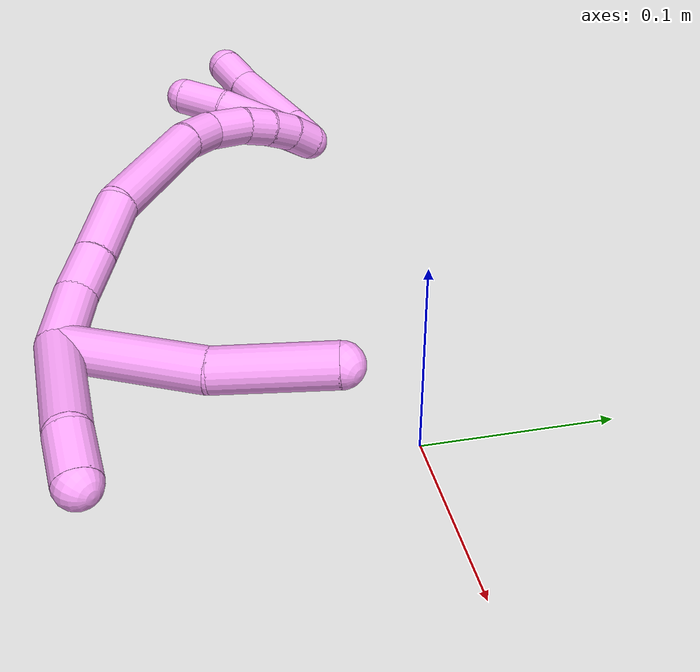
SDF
<sdf version="1.7">
 <world name="default">
  <model name="4">
   <static>0</static>
   <link name="4">
    <collision name="collision-cylinder-e_1_2_8">
     <pose>-0.020682 -0.001251 -0.035818 3.10669 -0.523386 -3.01145</pose>
     <geometry><cylinder><radius>0.0125</radius><length>0.082759</length></cylinder></geometry>
     <surface>
      <friction><ode><mu>1.16</mu><mu2>1.16</mu2><slip1>0</slip1><slip2>0</slip2></ode></friction>
      <contact><ode><kp>1e+06</kp><kd>1</kd><max_vel>0</max_vel><min_depth>0.001</min_depth></ode></contact>
     </surface>
    </collision>
    <visual name="visual-cylinder-e_1_2_8">
     <pose>-0.020682 -0.001251 -0.035818 3.10669 -0.523386 -3.01145</pose>
     <geometry><cylinder><radius>0.0125</radius><length>0.082759</length></cylinder></geometry>
     <material><ambient>1 0.65098 0.996078 1</ambient></material>
    </visual>
    <collision name="collision-cylinder-e_2_8_6">
     <pose>-0.063592 -0.001332 -0.096834 -3.09521 -0.722336 3.01893</pose>
     <geometry><cylinder><radius>0.0125</radius><length>0.067241</length></cylinder></geometry>
     <surface>
      <friction><ode><mu>1.16</mu><mu2>1.16</mu2><slip1>0</slip1><slip2>0</slip2></ode></friction>
      <contact><ode><kp>1e+06</kp><kd>1</kd><max_vel>0</max_vel><min_depth>0.001</min_depth></ode></contact>
     </surface>
    </collision>
    <visual name="visual-cylinder-e_2_8_6">
     <pose>-0.063592 -0.001332 -0.096834 -3.09521 -0.722336 3.01893</pose>
     <geometry><cylinder><radius>0.0125</radius><length>0.067241</length></cylinder></geometry>
     <material><ambient>1 0.65098 0.996078 1</ambient></material>
    </visual>
    <collision name="collision-cylinder-e_1_2_9">
     <pose>0.017543 0.004902 -0.030396 -2.98169 0.517924 -2.5542</pose>
     <geometry><cylinder><radius>0.0125</radius><length>0.070872</length></cylinder></geometry>
     <surface>
      <friction><ode><mu>1.16</mu><mu2>1.16</mu2><slip1>0</slip1><slip2>0</slip2></ode></friction>
      <contact><ode><kp>1e+06</kp><kd>1</kd><max_vel>0</max_vel><min_depth>0.001</min_depth></ode></contact>
     </surface>
    </collision>
    <visual name="visual-cylinder-e_1_2_9">
     <pose>0.017543 0.004902 -0.030396 -2.98169 0.517924 -2.5542</pose>
     <geometry><cylinder><radius>0.0125</radius><length>0.070872</length></cylinder></geometry>
     <material><ambient>1 0.65098 0.996078 1</ambient></material>
    </visual>
    <collision name="collision-cylinder-e_2_9_5">
     <pose>0.042031 0.008126 -0.073483 3.01009 0.497003 2.63381</pose>
     <geometry><cylinder><radius>0.0125</radius><length>0.029128</length></cylinder></geometry>
     <surface>
      <friction><ode><mu>1.16</mu><mu2>1.16</mu2><slip1>0</slip1><slip2>0</slip2></ode></friction>
      <contact><ode><kp>1e+06</kp><kd>1</kd><max_vel>0</max_vel><min_depth>0.001</min_depth></ode></contact>
     </surface>
    </collision>
    <visual name="visual-cylinder-e_2_9_5">
     <pose>0.042031 0.008126 -0.073483 3.01009 0.497003 2.63381</pose>
     <geometry><cylinder><radius>0.0125</radius><length>0.029128</length></cylinder></geometry>
     <material><ambient>1 0.65098 0.996078 1</ambient></material>
    </visual>
    <collision name="collision-cylinder-e_1_2_10">
     <pose>-0.014026 0.001666 0.010932 -0.151241 -0.903166 0.07346</pose>
     <geometry><cylinder><radius>0.0125</radius><length>0.035722</length></cylinder></geometry>
     <surface>
      <friction><ode><mu>1.16</mu><mu2>1.16</mu2><slip1>0</slip1><slip2>0</slip2></ode></friction>
      <contact><ode><kp>1e+06</kp><kd>1</kd><max_vel>0</max_vel><min_depth>0.001</min_depth></ode></contact>
     </surface>
    </collision>
    <visual name="visual-cylinder-e_1_2_10">
     <pose>-0.014026 0.001666 0.010932 -0.151241 -0.903166 0.07346</pose>
     <geometry><cylinder><radius>0.0125</radius><length>0.035722</length></cylinder></geometry>
     <material><ambient>1 0.65098 0.996078 1</ambient></material>
    </visual>
    <collision name="collision-cylinder-e_2_10_11">
     <pose>-0.039988 0.005956 0.028525 -0.375269 -1.03052 0.214215</pose>
     <geometry><cylinder><radius>0.0125</radius><length>0.027836</length></cylinder></geometry>
     <surface>
      <friction><ode><mu>1.16</mu><mu2>1.16</mu2><slip1>0</slip1><slip2>0</slip2></ode></friction>
      <contact><ode><kp>1e+06</kp><kd>1</kd><max_vel>0</max_vel><min_depth>0.001</min_depth></ode></contact>
     </surface>
    </collision>
    <visual name="visual-cylinder-e_2_10_11">
     <pose>-0.039988 0.005956 0.028525 -0.375269 -1.03052 0.214215</pose>
     <geometry><cylinder><radius>0.0125</radius><length>0.027836</length></cylinder></geometry>
     <material><ambient>1 0.65098 0.996078 1</ambient></material>
    </visual>
    <collision name="collision-cylinder-e_3_11_12">
     <pose>-0.06845 0.011721 0.045098 -0.306831 -1.0092 0.17039</pose>
     <geometry><cylinder><radius>0.0125</radius><length>0.039052</length></cylinder></geometry>
     <surface>
      <friction><ode><mu>1.16</mu><mu2>1.16</mu2><slip1>0</slip1><slip2>0</slip2></ode></friction>
      <contact><ode><kp>1e+06</kp><kd>1</kd><max_vel>0</max_vel><min_depth>0.001</min_depth></ode></contact>
     </surface>
    </collision>
    <visual name="visual-cylinder-e_3_11_12">
     <pose>-0.06845 0.011721 0.045098 -0.306831 -1.0092 0.17039</pose>
     <geometry><cylinder><radius>0.0125</radius><length>0.039052</length></cylinder></geometry>
     <material><ambient>1 0.65098 0.996078 1</ambient></material>
    </visual>
    <collision name="collision-cylinder-e_4_12_13">
     <pose>-0.122688 0.009695 0.07056 0.320825 -1.16091 -0.211434</pose>
     <geometry><cylinder><radius>0.0125</radius><length>0.082232</length></cylinder></geometry>
     <surface>
      <friction><ode><mu>1.16</mu><mu2>1.16</mu2><slip1>0</slip1><slip2>0</slip2></ode></friction>
      <contact><ode><kp>1e+06</kp><kd>1</kd><max_vel>0</max_vel><min_depth>0.001</min_depth></ode></contact>
     </surface>
    </collision>
    <visual name="visual-cylinder-e_4_12_13">
     <pose>-0.122688 0.009695 0.07056 0.320825 -1.16091 -0.211434</pose>
     <geometry><cylinder><radius>0.0125</radius><length>0.082232</length></cylinder></geometry>
     <material><ambient>1 0.65098 0.996078 1</ambient></material>
    </visual>
    <collision name="collision-cylinder-e_5_13_14">
     <pose>-0.172585 0.000772 0.089186 0.88441 -1.19165 -0.621275</pose>
     <geometry><cylinder><radius>0.0125</radius><length>0.026237</length></cylinder></geometry>
     <surface>
      <friction><ode><mu>1.16</mu><mu2>1.16</mu2><slip1>0</slip1><slip2>0</slip2></ode></friction>
      <contact><ode><kp>1e+06</kp><kd>1</kd><max_vel>0</max_vel><min_depth>0.001</min_depth></ode></contact>
     </surface>
    </collision>
    <visual name="visual-cylinder-e_5_13_14">
     <pose>-0.172585 0.000772 0.089186 0.88441 -1.19165 -0.621275</pose>
     <geometry><cylinder><radius>0.0125</radius><length>0.026237</length></cylinder></geometry>
     <material><ambient>1 0.65098 0.996078 1</ambient></material>
    </visual>
    <collision name="collision-cylinder-e_6_14_15">
     <pose>-0.19783 -0.007238 0.091 1.85954 -1.24324 -1.53008</pose>
     <geometry><cylinder><radius>0.0125</radius><length>0.027583</length></cylinder></geometry>
     <surface>
      <friction><ode><mu>1.16</mu><mu2>1.16</mu2><slip1>0</slip1><slip2>0</slip2></ode></friction>
      <contact><ode><kp>1e+06</kp><kd>1</kd><max_vel>0</max_vel><min_depth>0.001</min_depth></ode></contact>
     </surface>
    </collision>
    <visual name="visual-cylinder-e_6_14_15">
     <pose>-0.19783 -0.007238 0.091 1.85954 -1.24324 -1.53008</pose>
     <geometry><cylinder><radius>0.0125</radius><length>0.027583</length></cylinder></geometry>
     <material><ambient>1 0.65098 0.996078 1</ambient></material>
    </visual>
    <collision name="collision-cylinder-e_7_15_16">
     <pose>-0.219833 -0.016188 0.087607 1.99644 -1.04785 -1.46157</pose>
     <geometry><cylinder><radius>0.0125</radius><length>0.020652</length></cylinder></geometry>
     <surface>
      <friction><ode><mu>1.16</mu><mu2>1.16</mu2><slip1>0</slip1><slip2>0</slip2></ode></friction>
      <contact><ode><kp>1e+06</kp><kd>1</kd><max_vel>0</max_vel><min_depth>0.001</min_depth></ode></contact>
     </surface>
    </collision>
    <visual name="visual-cylinder-e_7_15_16">
     <pose>-0.219833 -0.016188 0.087607 1.99644 -1.04785 -1.46157</pose>
     <geometry><cylinder><radius>0.0125</radius><length>0.020652</length></cylinder></geometry>
     <material><ambient>1 0.65098 0.996078 1</ambient></material>
    </visual>
    <collision name="collision-cylinder-e_8_16_17">
     <pose>-0.237065 -0.026534 0.083851 1.85121 -0.953715 -1.2031</pose>
     <geometry><cylinder><radius>0.0125</radius><length>0.02032</length></cylinder></geometry>
     <surface>
      <friction><ode><mu>1.16</mu><mu2>1.16</mu2><slip1>0</slip1><slip2>0</slip2></ode></friction>
      <contact><ode><kp>1e+06</kp><kd>1</kd><max_vel>0</max_vel><min_depth>0.001</min_depth></ode></contact>
     </surface>
    </collision>
    <visual name="visual-cylinder-e_8_16_17">
     <pose>-0.237065 -0.026534 0.083851 1.85121 -0.953715 -1.2031</pose>
     <geometry><cylinder><radius>0.0125</radius><length>0.02032</length></cylinder></geometry>
     <material><ambient>1 0.65098 0.996078 1</ambient></material>
    </visual>
    <collision name="collision-cylinder-e_9_17_1">
     <pose>-0.25257 -0.03915 0.080471 1.81733 -0.787862 -0.979733</pose>
     <geometry><cylinder><radius>0.0125</radius><length>0.020367</length></cylinder></geometry>
     <surface>
      <friction><ode><mu>1.16</mu><mu2>1.16</mu2><slip1>0</slip1><slip2>0</slip2></ode></friction>
      <contact><ode><kp>1e+06</kp><kd>1</kd><max_vel>0</max_vel><min_depth>0.001</min_depth></ode></contact>
     </surface>
    </collision>
    <visual name="visual-cylinder-e_9_17_1">
     <pose>-0.25257 -0.03915 0.080471 1.81733 -0.787862 -0.979733</pose>
     <geometry><cylinder><radius>0.0125</radius><length>0.020367</length></cylinder></geometry>
     <material><ambient>1 0.65098 0.996078 1</ambient></material>
    </visual>
    <collision name="collision-cylinder-e_1_1_18">
     <pose>-0.248226 -0.038372 0.109913 -0.243313 0.345309 -0.042636</pose>
     <geometry><cylinder><radius>0.0125</radius><length>0.068317</length></cylinder></geometry>
     <surface>
      <friction><ode><mu>1.16</mu><mu2>1.16</mu2><slip1>0</slip1><slip2>0</slip2></ode></friction>
      <contact><ode><kp>1e+06</kp><kd>1</kd><max_vel>0</max_vel><min_depth>0.001</min_depth></ode></contact>
     </surface>
    </collision>
    <visual name="visual-cylinder-e_1_1_18">
     <pose>-0.248226 -0.038372 0.109913 -0.243313 0.345309 -0.042636</pose>
     <geometry><cylinder><radius>0.0125</radius><length>0.068317</length></cylinder></geometry>
     <material><ambient>1 0.65098 0.996078 1</ambient></material>
    </visual>
    <collision name="collision-cylinder-e_2_18_4">
     <pose>-0.231278 -0.02918 0.155936 -0.097316 0.346889 -0.017063</pose>
     <geometry><cylinder><radius>0.0125</radius><length>0.031683</length></cylinder></geometry>
     <surface>
      <friction><ode><mu>1.16</mu><mu2>1.16</mu2><slip1>0</slip1><slip2>0</slip2></ode></friction>
      <contact><ode><kp>1e+06</kp><kd>1</kd><max_vel>0</max_vel><min_depth>0.001</min_depth></ode></contact>
     </surface>
    </collision>
    <visual name="visual-cylinder-e_2_18_4">
     <pose>-0.231278 -0.02918 0.155936 -0.097316 0.346889 -0.017063</pose>
     <geometry><cylinder><radius>0.0125</radius><length>0.031683</length></cylinder></geometry>
     <material><ambient>1 0.65098 0.996078 1</ambient></material>
    </visual>
    <collision name="collision-cylinder-e_1_1_19">
     <pose>-0.261076 -0.04422 0.088651 -0.188496 -0.126621 0.011985</pose>
     <geometry><cylinder><radius>0.0125</radius><length>0.020389</length></cylinder></geometry>
     <surface>
      <friction><ode><mu>1.16</mu><mu2>1.16</mu2><slip1>0</slip1><slip2>0</slip2></ode></friction>
      <contact><ode><kp>1e+06</kp><kd>1</kd><max_vel>0</max_vel><min_depth>0.001</min_depth></ode></contact>
     </surface>
    </collision>
    <visual name="visual-cylinder-e_1_1_19">
     <pose>-0.261076 -0.04422 0.088651 -0.188496 -0.126621 0.011985</pose>
     <geometry><cylinder><radius>0.0125</radius><length>0.020389</length></cylinder></geometry>
     <material><ambient>1 0.65098 0.996078 1</ambient></material>
    </visual>
    <collision name="collision-cylinder-e_2_19_20">
     <pose>-0.2649 -0.037317 0.12529 -0.185378 -0.093096 0.00866</pose>
     <geometry><cylinder><radius>0.0125</radius><length>0.054577</length></cylinder></geometry>
     <surface>
      <friction><ode><mu>1.16</mu><mu2>1.16</mu2><slip1>0</slip1><slip2>0</slip2></ode></friction>
      <contact><ode><kp>1e+06</kp><kd>1</kd><max_vel>0</max_vel><min_depth>0.001</min_depth></ode></contact>
     </surface>
    </collision>
    <visual name="visual-cylinder-e_2_19_20">
     <pose>-0.2649 -0.037317 0.12529 -0.185378 -0.093096 0.00866</pose>
     <geometry><cylinder><radius>0.0125</radius><length>0.054577</length></cylinder></geometry>
     <material><ambient>1 0.65098 0.996078 1</ambient></material>
    </visual>
    <collision name="collision-cylinder-e_3_20_3">
     <pose>-0.269366 -0.029346 0.164002 -0.24194 -0.154792 0.018854</pose>
     <geometry><cylinder><radius>0.0125</radius><length>0.025034</length></cylinder></geometry>
     <surface>
      <friction><ode><mu>1.16</mu><mu2>1.16</mu2><slip1>0</slip1><slip2>0</slip2></ode></friction>
      <contact><ode><kp>1e+06</kp><kd>1</kd><max_vel>0</max_vel><min_depth>0.001</min_depth></ode></contact>
     </surface>
    </collision>
    <visual name="visual-cylinder-e_3_20_3">
     <pose>-0.269366 -0.029346 0.164002 -0.24194 -0.154792 0.018854</pose>
     <geometry><cylinder><radius>0.0125</radius><length>0.025034</length></cylinder></geometry>
     <material><ambient>1 0.65098 0.996078 1</ambient></material>
    </visual>
    <collision name="collision-sphere-3">
     <pose>-0.271296 -0.026383 0.176009 0 -0 0</pose>
     <geometry><sphere><radius>0.0125</radius></sphere></geometry>
     <surface>
      <friction><ode><mu>1.16</mu><mu2>1.16</mu2><slip1>0</slip1><slip2>0</slip2></ode></friction>
      <contact><ode><kp>1e+06</kp><kd>1</kd><max_vel>0</max_vel><min_depth>0.001</min_depth></ode></contact>
     </surface>
    </collision>
    <visual name="visual-sphere-3">
     <pose>-0.271296 -0.026383 0.176009 0 -0 0</pose>
     <geometry><sphere><radius>0.0125</radius></sphere></geometry>
     <material><ambient>1 0.65098 0.996078 1</ambient></material>
    </visual>
    <collision name="collision-sphere-20">
     <pose>-0.267437 -0.032309 0.151995 0 -0 0</pose>
     <geometry><sphere><radius>0.0125</radius></sphere></geometry>
     <surface>
      <friction><ode><mu>1.16</mu><mu2>1.16</mu2><slip1>0</slip1><slip2>0</slip2></ode></friction>
      <contact><ode><kp>1e+06</kp><kd>1</kd><max_vel>0</max_vel><min_depth>0.001</min_depth></ode></contact>
     </surface>
    </collision>
    <visual name="visual-sphere-20">
     <pose>-0.267437 -0.032309 0.151995 0 -0 0</pose>
     <geometry><sphere><radius>0.0125</radius></sphere></geometry>
     <material><ambient>1 0.65098 0.996078 1</ambient></material>
    </visual>
    <collision name="collision-sphere-19">
     <pose>-0.262363 -0.042325 0.098585 0 -0 0</pose>
     <geometry><sphere><radius>0.0125</radius></sphere></geometry>
     <surface>
      <friction><ode><mu>1.16</mu><mu2>1.16</mu2><slip1>0</slip1><slip2>0</slip2></ode></friction>
      <contact><ode><kp>1e+06</kp><kd>1</kd><max_vel>0</max_vel><min_depth>0.001</min_depth></ode></contact>
     </surface>
    </collision>
    <visual name="visual-sphere-19">
     <pose>-0.262363 -0.042325 0.098585 0 -0 0</pose>
     <geometry><sphere><radius>0.0125</radius></sphere></geometry>
     <material><ambient>1 0.65098 0.996078 1</ambient></material>
    </visual>
    <collision name="collision-sphere-10">
     <pose>-0.028052 0.003332 0.021864 0 -0 0</pose>
     <geometry><sphere><radius>0.0125</radius></sphere></geometry>
     <surface>
      <friction><ode><mu>1.16</mu><mu2>1.16</mu2><slip1>0</slip1><slip2>0</slip2></ode></friction>
      <contact><ode><kp>1e+06</kp><kd>1</kd><max_vel>0</max_vel><min_depth>0.001</min_depth></ode></contact>
     </surface>
    </collision>
    <visual name="visual-sphere-10">
     <pose>-0.028052 0.003332 0.021864 0 -0 0</pose>
     <geometry><sphere><radius>0.0125</radius></sphere></geometry>
     <material><ambient>1 0.65098 0.996078 1</ambient></material>
    </visual>
    <collision name="collision-sphere-5">
     <pose>0.048975 0.006447 -0.086174 0 -0 0</pose>
     <geometry><sphere><radius>0.0125</radius></sphere></geometry>
     <surface>
      <friction><ode><mu>1.16</mu><mu2>1.16</mu2><slip1>0</slip1><slip2>0</slip2></ode></friction>
      <contact><ode><kp>1e+06</kp><kd>1</kd><max_vel>0</max_vel><min_depth>0.001</min_depth></ode></contact>
     </surface>
    </collision>
    <visual name="visual-sphere-5">
     <pose>0.048975 0.006447 -0.086174 0 -0 0</pose>
     <geometry><sphere><radius>0.0125</radius></sphere></geometry>
     <material><ambient>1 0.65098 0.996078 1</ambient></material>
    </visual>
    <collision name="collision-sphere-6">
     <pose>-0.08582 -0.000162 -0.122031 0 -0 0</pose>
     <geometry><sphere><radius>0.0125</radius></sphere></geometry>
     <surface>
      <friction><ode><mu>1.16</mu><mu2>1.16</mu2><slip1>0</slip1><slip2>0</slip2></ode></friction>
      <contact><ode><kp>1e+06</kp><kd>1</kd><max_vel>0</max_vel><min_depth>0.001</min_depth></ode></contact>
     </surface>
    </collision>
    <visual name="visual-sphere-6">
     <pose>-0.08582 -0.000162 -0.122031 0 -0 0</pose>
     <geometry><sphere><radius>0.0125</radius></sphere></geometry>
     <material><ambient>1 0.65098 0.996078 1</ambient></material>
    </visual>
    <collision name="collision-sphere-9">
     <pose>0.035087 0.009804 -0.060791 0 -0 0</pose>
     <geometry><sphere><radius>0.0125</radius></sphere></geometry>
     <surface>
      <friction><ode><mu>1.16</mu><mu2>1.16</mu2><slip1>0</slip1><slip2>0</slip2></ode></friction>
      <contact><ode><kp>1e+06</kp><kd>1</kd><max_vel>0</max_vel><min_depth>0.001</min_depth></ode></contact>
     </surface>
    </collision>
    <visual name="visual-sphere-9">
     <pose>0.035087 0.009804 -0.060791 0 -0 0</pose>
     <geometry><sphere><radius>0.0125</radius></sphere></geometry>
     <material><ambient>1 0.65098 0.996078 1</ambient></material>
    </visual>
    <collision name="collision-sphere-2">
     <geometry><sphere><radius>0.0125</radius></sphere></geometry>
     <surface>
      <friction><ode><mu>1.16</mu><mu2>1.16</mu2><slip1>0</slip1><slip2>0</slip2></ode></friction>
      <contact><ode><kp>1e+06</kp><kd>1</kd><max_vel>0</max_vel><min_depth>0.001</min_depth></ode></contact>
     </surface>
    </collision>
    <visual name="visual-sphere-2">
     <geometry><sphere><radius>0.0125</radius></sphere></geometry>
     <material><ambient>1 0.65098 0.996078 1</ambient></material>
    </visual>
    <collision name="collision-sphere-8">
     <pose>-0.041364 -0.002501 -0.071637 0 -0 0</pose>
     <geometry><sphere><radius>0.0125</radius></sphere></geometry>
     <surface>
      <friction><ode><mu>1.16</mu><mu2>1.16</mu2><slip1>0</slip1><slip2>0</slip2></ode></friction>
      <contact><ode><kp>1e+06</kp><kd>1</kd><max_vel>0</max_vel><min_depth>0.001</min_depth></ode></contact>
     </surface>
    </collision>
    <visual name="visual-sphere-8">
     <pose>-0.041364 -0.002501 -0.071637 0 -0 0</pose>
     <geometry><sphere><radius>0.0125</radius></sphere></geometry>
     <material><ambient>1 0.65098 0.996078 1</ambient></material>
    </visual>
    <collision name="collision-sphere-11">
     <pose>-0.051923 0.00858 0.035186 0 -0 0</pose>
     <geometry><sphere><radius>0.0125</radius></sphere></geometry>
     <surface>
      <friction><ode><mu>1.16</mu><mu2>1.16</mu2><slip1>0</slip1><slip2>0</slip2></ode></friction>
      <contact><ode><kp>1e+06</kp><kd>1</kd><max_vel>0</max_vel><min_depth>0.001</min_depth></ode></contact>
     </surface>
    </collision>
    <visual name="visual-sphere-11">
     <pose>-0.051923 0.00858 0.035186 0 -0 0</pose>
     <geometry><sphere><radius>0.0125</radius></sphere></geometry>
     <material><ambient>1 0.65098 0.996078 1</ambient></material>
    </visual>
    <collision name="collision-sphere-12">
     <pose>-0.084978 0.014862 0.055011 0 -0 0</pose>
     <geometry><sphere><radius>0.0125</radius></sphere></geometry>
     <surface>
      <friction><ode><mu>1.16</mu><mu2>1.16</mu2><slip1>0</slip1><slip2>0</slip2></ode></friction>
      <contact><ode><kp>1e+06</kp><kd>1</kd><max_vel>0</max_vel><min_depth>0.001</min_depth></ode></contact>
     </surface>
    </collision>
    <visual name="visual-sphere-12">
     <pose>-0.084978 0.014862 0.055011 0 -0 0</pose>
     <geometry><sphere><radius>0.0125</radius></sphere></geometry>
     <material><ambient>1 0.65098 0.996078 1</ambient></material>
    </visual>
    <collision name="collision-sphere-13">
     <pose>-0.160398 0.004528 0.086109 0 -0 0</pose>
     <geometry><sphere><radius>0.0125</radius></sphere></geometry>
     <surface>
      <friction><ode><mu>1.16</mu><mu2>1.16</mu2><slip1>0</slip1><slip2>0</slip2></ode></friction>
      <contact><ode><kp>1e+06</kp><kd>1</kd><max_vel>0</max_vel><min_depth>0.001</min_depth></ode></contact>
     </surface>
    </collision>
    <visual name="visual-sphere-13">
     <pose>-0.160398 0.004528 0.086109 0 -0 0</pose>
     <geometry><sphere><radius>0.0125</radius></sphere></geometry>
     <material><ambient>1 0.65098 0.996078 1</ambient></material>
    </visual>
    <collision name="collision-sphere-14">
     <pose>-0.184771 -0.002984 0.092263 0 -0 0</pose>
     <geometry><sphere><radius>0.0125</radius></sphere></geometry>
     <surface>
      <friction><ode><mu>1.16</mu><mu2>1.16</mu2><slip1>0</slip1><slip2>0</slip2></ode></friction>
      <contact><ode><kp>1e+06</kp><kd>1</kd><max_vel>0</max_vel><min_depth>0.001</min_depth></ode></contact>
     </surface>
    </collision>
    <visual name="visual-sphere-14">
     <pose>-0.184771 -0.002984 0.092263 0 -0 0</pose>
     <geometry><sphere><radius>0.0125</radius></sphere></geometry>
     <material><ambient>1 0.65098 0.996078 1</ambient></material>
    </visual>
    <collision name="collision-sphere-15">
     <pose>-0.210888 -0.011491 0.089737 0 -0 0</pose>
     <geometry><sphere><radius>0.0125</radius></sphere></geometry>
     <surface>
      <friction><ode><mu>1.16</mu><mu2>1.16</mu2><slip1>0</slip1><slip2>0</slip2></ode></friction>
      <contact><ode><kp>1e+06</kp><kd>1</kd><max_vel>0</max_vel><min_depth>0.001</min_depth></ode></contact>
     </surface>
    </collision>
    <visual name="visual-sphere-15">
     <pose>-0.210888 -0.011491 0.089737 0 -0 0</pose>
     <geometry><sphere><radius>0.0125</radius></sphere></geometry>
     <material><ambient>1 0.65098 0.996078 1</ambient></material>
    </visual>
    <collision name="collision-sphere-16">
     <pose>-0.228779 -0.020885 0.085478 0 -0 0</pose>
     <geometry><sphere><radius>0.0125</radius></sphere></geometry>
     <surface>
      <friction><ode><mu>1.16</mu><mu2>1.16</mu2><slip1>0</slip1><slip2>0</slip2></ode></friction>
      <contact><ode><kp>1e+06</kp><kd>1</kd><max_vel>0</max_vel><min_depth>0.001</min_depth></ode></contact>
     </surface>
    </collision>
    <visual name="visual-sphere-16">
     <pose>-0.228779 -0.020885 0.085478 0 -0 0</pose>
     <geometry><sphere><radius>0.0125</radius></sphere></geometry>
     <material><ambient>1 0.65098 0.996078 1</ambient></material>
    </visual>
    <collision name="collision-sphere-17">
     <pose>-0.245351 -0.032184 0.082224 0 -0 0</pose>
     <geometry><sphere><radius>0.0125</radius></sphere></geometry>
     <surface>
      <friction><ode><mu>1.16</mu><mu2>1.16</mu2><slip1>0</slip1><slip2>0</slip2></ode></friction>
      <contact><ode><kp>1e+06</kp><kd>1</kd><max_vel>0</max_vel><min_depth>0.001</min_depth></ode></contact>
     </surface>
    </collision>
    <visual name="visual-sphere-17">
     <pose>-0.245351 -0.032184 0.082224 0 -0 0</pose>
     <geometry><sphere><radius>0.0125</radius></sphere></geometry>
     <material><ambient>1 0.65098 0.996078 1</ambient></material>
    </visual>
    <collision name="collision-sphere-1">
     <pose>-0.259788 -0.046115 0.078718 0 -0 0</pose>
     <geometry><sphere><radius>0.0125</radius></sphere></geometry>
     <surface>
      <friction><ode><mu>1.16</mu><mu2>1.16</mu2><slip1>0</slip1><slip2>0</slip2></ode></friction>
      <contact><ode><kp>1e+06</kp><kd>1</kd><max_vel>0</max_vel><min_depth>0.001</min_depth></ode></contact>
     </surface>
    </collision>
    <visual name="visual-sphere-1">
     <pose>-0.259788 -0.046115 0.078718 0 -0 0</pose>
     <geometry><sphere><radius>0.0125</radius></sphere></geometry>
     <material><ambient>1 0.65098 0.996078 1</ambient></material>
    </visual>
    <collision name="collision-sphere-18">
     <pose>-0.236664 -0.030628 0.141109 0 -0 0</pose>
     <geometry><sphere><radius>0.0125</radius></sphere></geometry>
     <surface>
      <friction><ode><mu>1.16</mu><mu2>1.16</mu2><slip1>0</slip1><slip2>0</slip2></ode></friction>
      <contact><ode><kp>1e+06</kp><kd>1</kd><max_vel>0</max_vel><min_depth>0.001</min_depth></ode></contact>
     </surface>
    </collision>
    <visual name="visual-sphere-18">
     <pose>-0.236664 -0.030628 0.141109 0 -0 0</pose>
     <geometry><sphere><radius>0.0125</radius></sphere></geometry>
     <material><ambient>1 0.65098 0.996078 1</ambient></material>
    </visual>
    <collision name="collision-sphere-4">
     <pose>-0.225892 -0.027733 0.170763 0 -0 0</pose>
     <geometry><sphere><radius>0.0125</radius></sphere></geometry>
     <surface>
      <friction><ode><mu>1.16</mu><mu2>1.16</mu2><slip1>0</slip1><slip2>0</slip2></ode></friction>
      <contact><ode><kp>1e+06</kp><kd>1</kd><max_vel>0</max_vel><min_depth>0.001</min_depth></ode></contact>
     </surface>
    </collision>
    <visual name="visual-sphere-4">
     <pose>-0.225892 -0.027733 0.170763 0 -0 0</pose>
     <geometry><sphere><radius>0.0125</radius></sphere></geometry>
     <material><ambient>1 0.65098 0.996078 1</ambient></material>
    </visual>
    <inertial>
     <pose>-0.124255 -0.009597 0.040241 0 -0 0</pose>
     <mass>0.75</mass>
     <inertia>
      <ixx>-5.7e-05</ixx>
      <ixy>0</ixy>
      <ixz>0</ixz>
      <iyy>0.000206</iyy>
      <iyz>0</iyz>
      <izz>8.2e-05</izz>
     </inertia>
    </inertial>
   </link>
   <pose>-0.092596 -0.169099 0.020309 1.49687 0.176362 -0.992311</pose>
  </model>
 </world>
</sdf>
